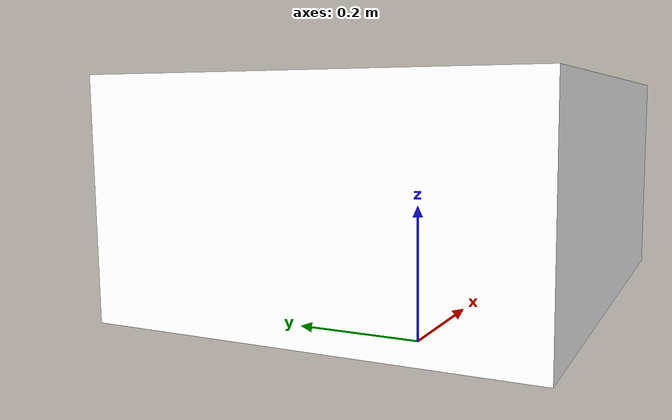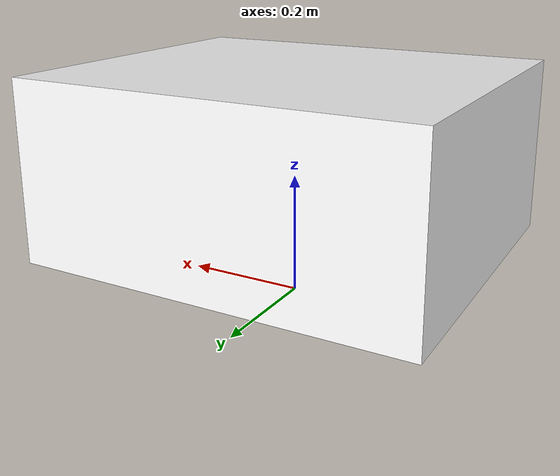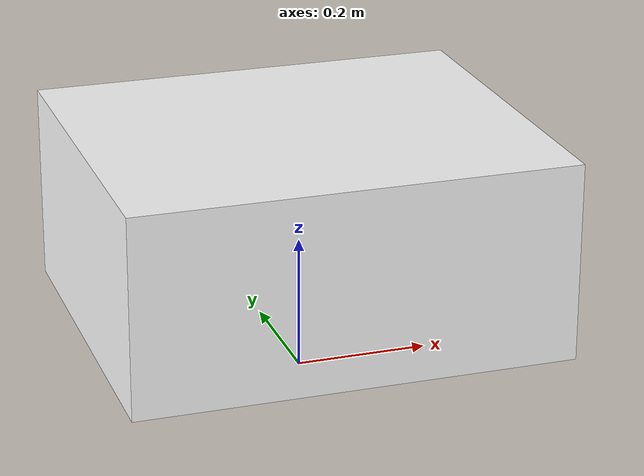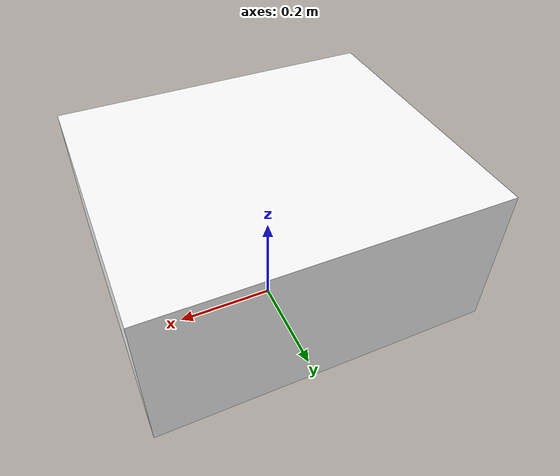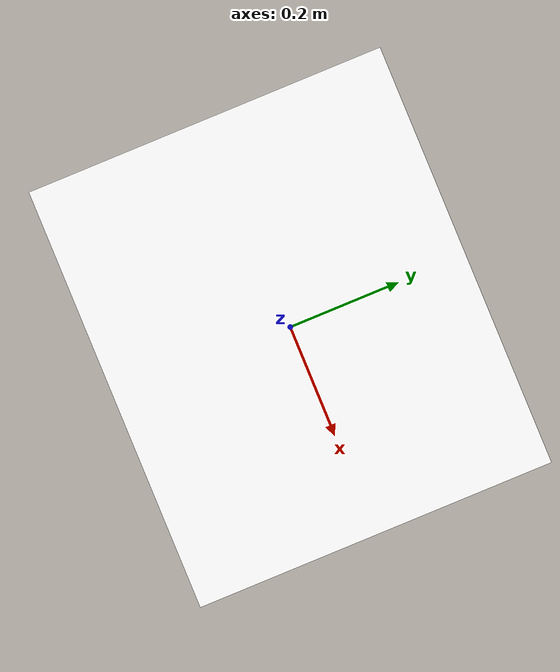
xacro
<?xml version="1.0"?>
<robot name="turtle1">
    <link name="base_footprint" />
    <link name="base_link">
        <visual>
            <geometry>
                <box size="0.65 0.55 0.295"/>
            </geometry>
            <material name="chassis_color">
                <color rgba="1.0 1.0 1.0 1.0"/>
            </material>
        </visual>
    </link>
    <joint name="base_offset" type="fixed">
        <parent link="base_footprint"/>
        <child link="base_link"/>
        <origin xyz ="0.0 0.0 0.23"/>
    </joint>
</robot>
